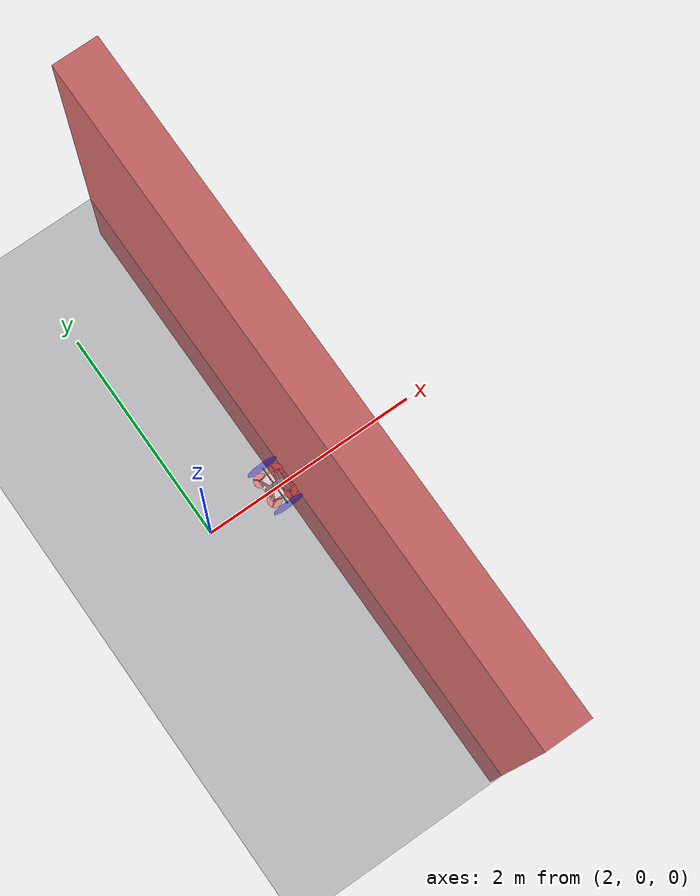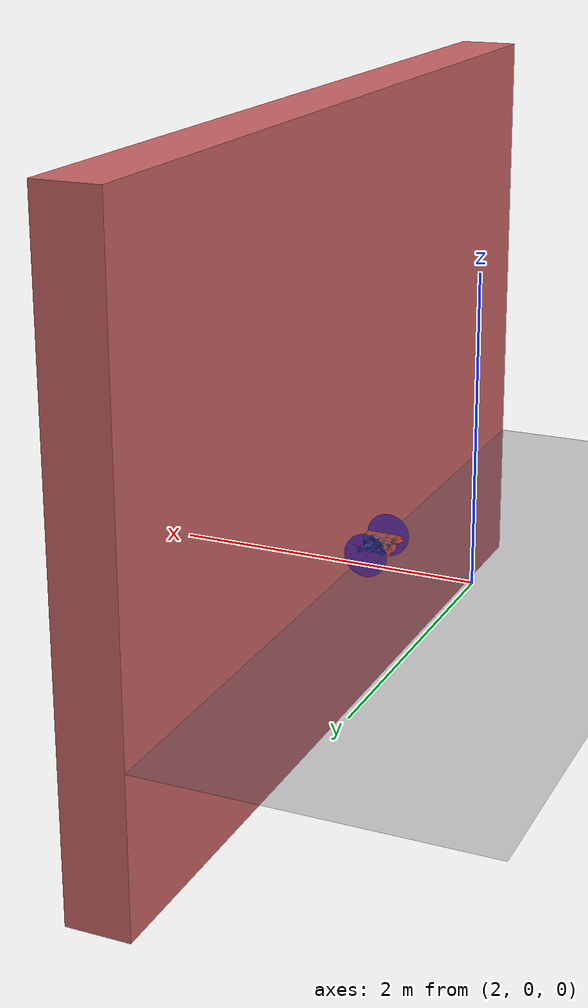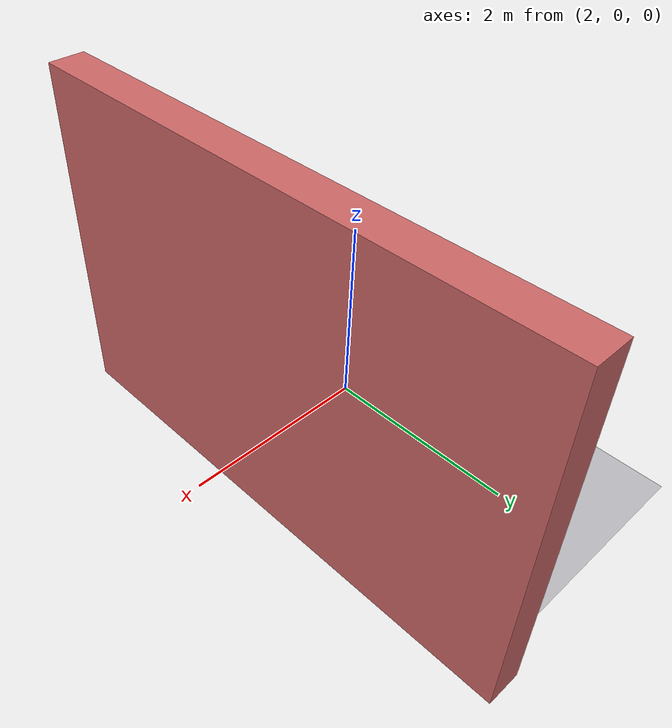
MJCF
<mujoco>
  <statistic extent="3" center="0 0 0.5"/>
  <option gravity="0 0 -9.81" timestep="0.001"/>
  <visual>
    <headlight ambient="0.35 0.35 0.35" diffuse="0.65 0.65 0.65" specular="0.2 0.2 0.2"/>
  </visual>

  <default>
    <motor ctrllimited="true" ctrlrange="0 20"/>
  </default>

  <asset>
    <texture type="2d" name="checker" builtin="checker" rgb1=".34 .40 .46" rgb2=".22 .27 .32" width="512" height="512"/>
    <material name="floor_mat" texture="checker" texrepeat="5 5" texuniform="true" specular="0.15" shininess="0.2" rgba="1 1 1 1"/>
    <mesh name="drone_cad" file="../../drone_body.stl" scale="0.001 0.001 0.001"/>

  </asset>

  <worldbody>
    <light ambient=".2 .2 .2" diffuse="1 1 1" pos="0 0 3.5" dir="0 0 -1"/>
    <light ambient=".08 .08 .08" diffuse=".55 .55 .55" pos="-2 -1 4" dir="0.35 0.2 -1"/>
    <geom name="surface_geom" solref="0.005 1" contype="1" conaffinity="1" material="floor_mat" rgba="0.3 0.3 0.35 1" type="plane" size="3 3 0.1"/>

    <body name="wall" pos="3 0 1">
      <geom type="box" size="0.2 3 2" rgba="0.8 0.4 0.4 1" solref="0.005 1" contype="1" conaffinity="1"/>
    </body>

    <body name="drone" pos="2.65 0 0.15">
      <joint type="free"/>
      <site name="prop_fr" pos="0.075025 -0.100264 0.0125" zaxis="0 0 1" type="cylinder" size="0.063 0.005" rgba="0.92 0.24 0.24 0.55"/>
      <site name="prop_fl" pos="0.075025 0.100264 0.0125" zaxis="0 0 1" type="cylinder" size="0.063 0.005" rgba="0.92 0.24 0.24 0.55"/>
      <site name="prop_br" pos="-0.075025 -0.100264 0.0125" zaxis="0 0 1" type="cylinder" size="0.063 0.005" rgba="0.92 0.24 0.24 0.55"/>
      <site name="prop_bl" pos="-0.075025 0.100264 0.0125" zaxis="0 0 1" type="cylinder" size="0.063 0.005" rgba="0.92 0.24 0.24 0.55"/>
      <geom type="mesh" mesh="drone_cad" contype="0" conaffinity="0" mass="0" group="1"/>
      <geom name="drone_body_box" type="box" size="0.095 0.0475 0.1" euler="90 0 0" mass="0.9" group="0" rgba="0.92 0.24 0.24 0.2" contype="1" conaffinity="1"/>
      <body name="right_wheel" pos="0 -0.192 0">
        <joint name="joint_rw" type="hinge" axis="0 1 0" damping="0.001"/>
        <geom name="right_wheel_geom" type="cylinder" size="0.142 0.006" euler="90 0 0" mass="0.1" rgba="0 0 1 0.5" solref="0.05 2" contype="1" conaffinity="1"/>
      </body>
      <body name="left_wheel" pos="0 0.192 0">
        <joint name="joint_lw" type="hinge" axis="0 1 0" damping="0.001"/>
        <geom name="left_wheel_geom" type="cylinder" size="0.142 0.006" euler="90 0 0" mass="0.1" rgba="0 0 1 0.5" solref="0.05 2" contype="1" conaffinity="1"/>
      </body>
    </body>
  </worldbody>

  <actuator>
    <motor name="drone_thrust_fr" site="prop_fr" gear="0 0 1 0 0 0.02"/>
    <motor name="drone_thrust_fl" site="prop_fl" gear="0 0 1 -0 -0 -0.02"/>
    <motor name="drone_thrust_br" site="prop_br" gear="0 0 1 -0 -0 -0.02"/>
    <motor name="drone_thrust_bl" site="prop_bl" gear="0 0 1 0 0 0.02"/>
  </actuator>

  <sensor>
    <framepos name="drone_position" objtype="xbody" objname="drone"/>
    <framelinvel name="drone_linear_velocity" objtype="xbody" objname="drone"/>
    <frameangvel name="drone_angular_velocity" objtype="xbody" objname="drone"/>
    <framexaxis name="drone_x_axis" objtype="xbody" objname="drone"/>
    <frameyaxis name="drone_y_axis" objtype="xbody" objname="drone"/>
    <framezaxis name="drone_z_axis" objtype="xbody" objname="drone"/>
  </sensor>
</mujoco>
